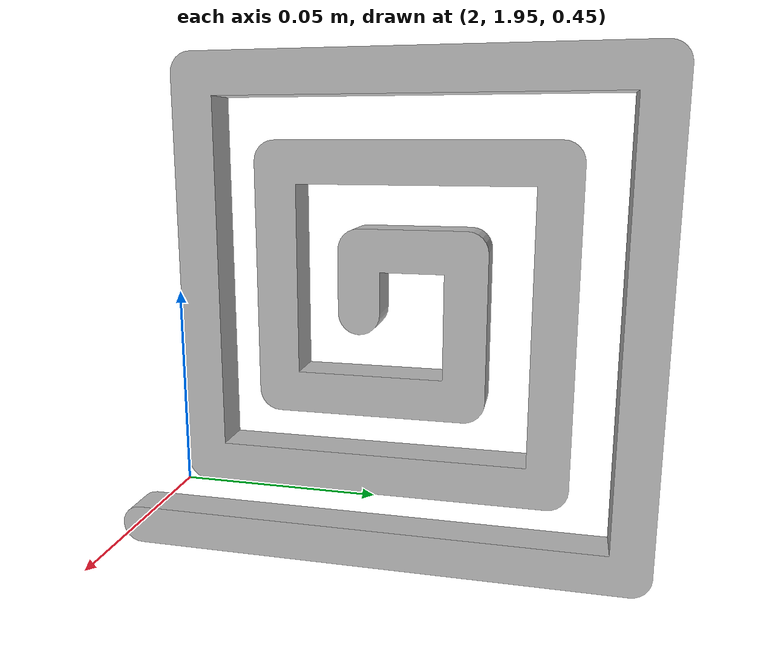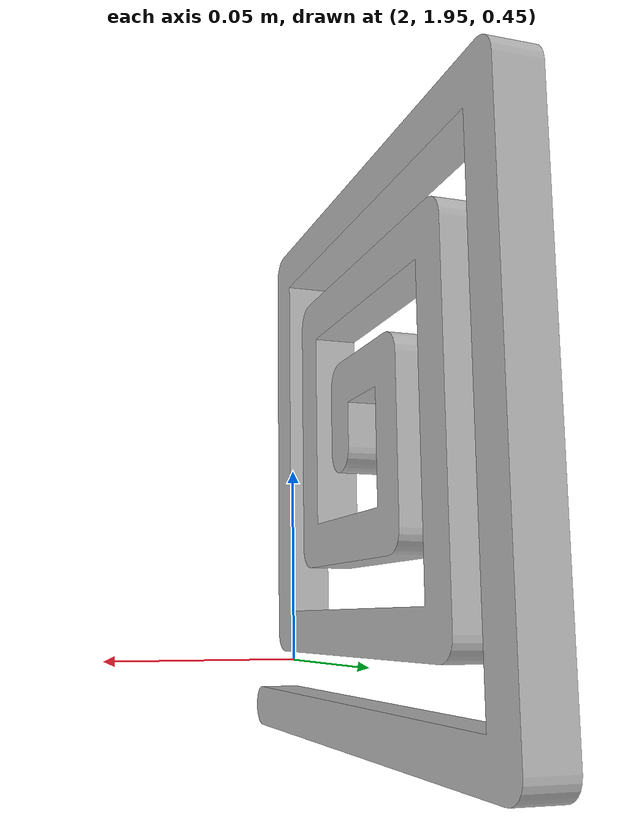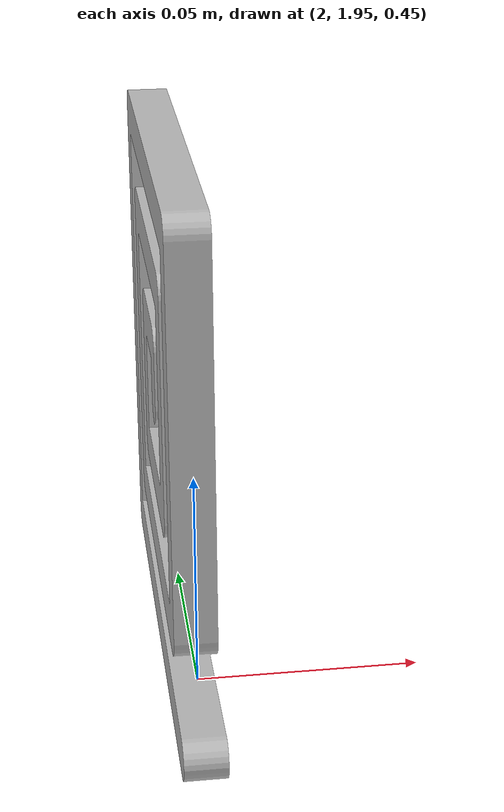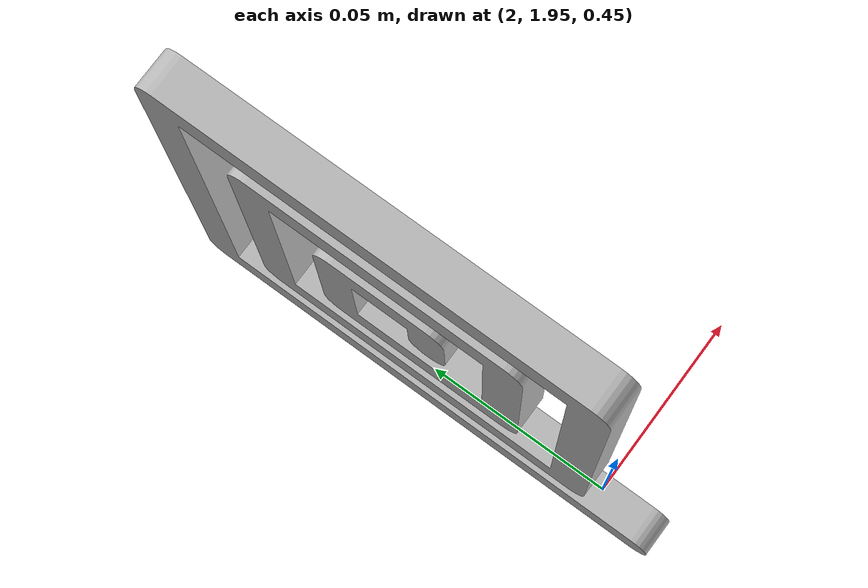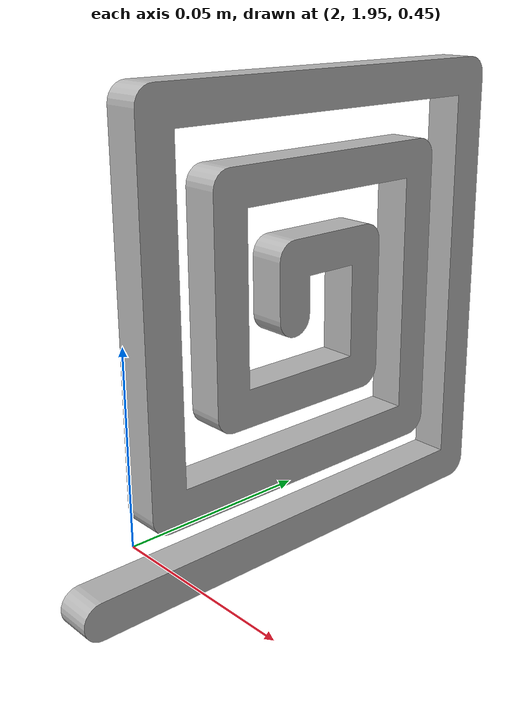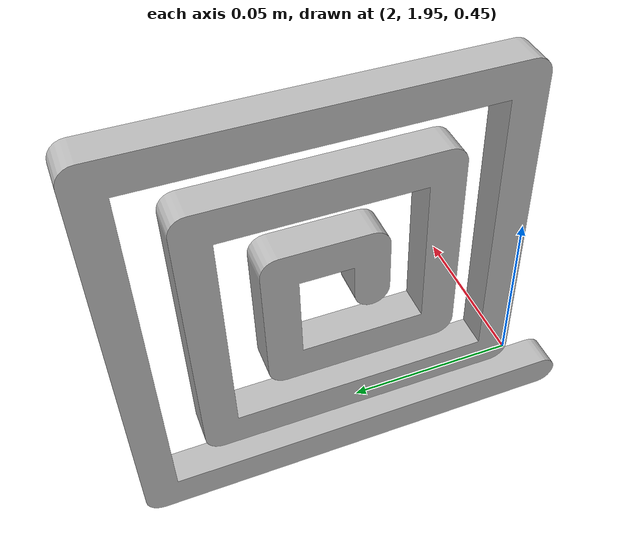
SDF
<?xml version='1.0'?>
<sdf version='1.6'>

        <model name="tag_model">
          <link name="link">
            <pose>2 2 0.5 0 0 0</pose>

            <collision name="tag_collision">
              <geometry>
              <mesh>
                <uri>model://tag/tag.stl</uri>
                <scale>0.005 0.005 0.005</scale>
              </mesh>
              </geometry>
            </collision>

            <visual name="tag_visual">
            <geometry>
              <mesh>
                <uri>model://tag/tag.stl</uri>
                <scale>0.005 0.005 0.005</scale>
              </mesh>
            </geometry>
            </visual>

            <sensor name='my_tag' type='rfidtag'>
                  <always_on>1</always_on>
                  <topic>/tag_topic_name</topic>
            </sensor>
          </link>
        </model>

</sdf>
